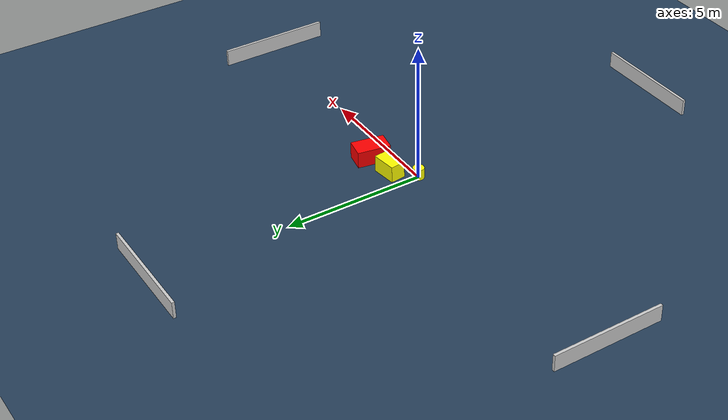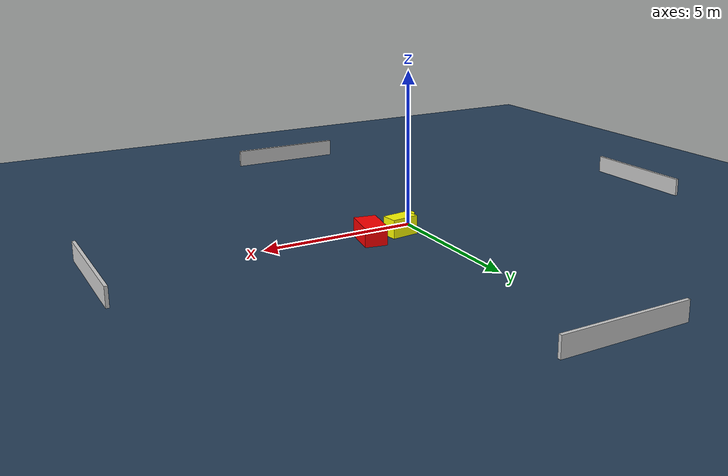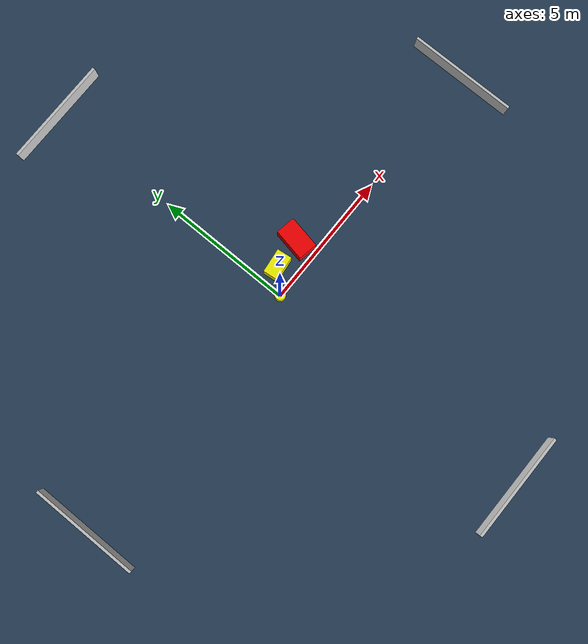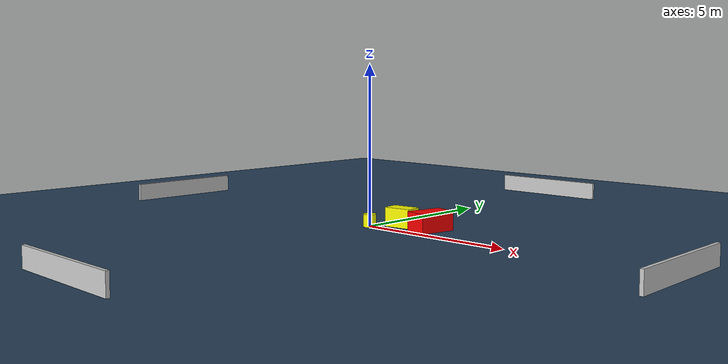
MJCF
<?xml version="1.0" ?>
<mujoco model="generated_environment">
  <option timestep="0.01" integrator="RK4" cone="elliptic"/>
  <default>
    <geom density="1"/>
  </default>
  <asset>
    <texture builtin="gradient" height="3072" name="skybox" rgb1="0.3 0.5 0.7" rgb2="0 0 0" type="skybox" width="512"/>
    <texture builtin="checker" height="300" name="groundplane" rgb1="0.2 0.3 0.4" rgb2="0.1 0.2 0.3" type="2d" width="300"/>
    <material name="groundplane" reflectance="0.2" texrepeat="5 5" texture="groundplane"/>
  </asset>
  <worldbody>
    <light dir="0 0 -1" directional="true" pos="0 0 1.5"/>
    <geom condim="3" friction="0.5 0.005 0.001" material="groundplane" name="floor" pos="0 0 0" size="0 0 0.05" type="plane"/>
    <body name="walls">
      <geom name="wall_1" condim="4" pos="-10.0 0.0 0.3" rgba="0.800000011920929 0.800000011920929 0.800000011920929 1.0" size="0.05 2.0 0.3" type="box"/>
      <geom name="wall_2" condim="4" pos="10.0 0.0 0.3" rgba="0.800000011920929 0.800000011920929 0.800000011920929 1.0" size="0.05 2.0 0.3" type="box"/>
      <geom name="wall_3" condim="4" pos="0.0 -10.0 0.3" rgba="0.800000011920929 0.800000011920929 0.800000011920929 1.0" size="2.0 0.05 0.3" type="box"/>
      <geom name="wall_4" condim="4" pos="0.0 10.0 0.3" rgba="0.800000011920929 0.800000011920929 0.800000011920929 1.0" size="2.0 0.05 0.3" type="box"/>
    </body>
    <body name="robot">
      <joint name="joint_x" type="slide" pos="0 0 0" axis="1 0 0"/>
      <joint name="joint_y" type="slide" pos="0 0 0" axis="0 1 0"/>
      <geom name="robot" type="cylinder" pos="0.0 0.0 0.2" size="0.2 0.2 0.0" mass="5.0" friction="1.0 0.005 0.0001" condim="4" rgba="1.0 1.0 0.0 1.0"/>
    </body>
    <body name="obstacle_1_movable">
      <geom name="obstacle_1_movable" condim="4" pos="0.7087482299446437 0.6968750549853211 0.3" euler="0 0 186.7560653791318" friction="0.0 0.005 0.001" rgba="1.0 1.0 0.0 1.0" size="0.4480767014963085 0.27032300454286895 0.3" type="box" mass="0.1"/>
      <joint type="free"/>
    </body>
    <body name="obstacle_2_static">
      <geom name="obstacle_2_static" condim="4" pos="1.807278593864164 0.7641240777066337 0.3" euler="0 0 259.5370960392293" friction="0.0 0.005 0.001" rgba="1.0 0.0 0.0 1.0" size="0.5963840688586992 0.35489285318574404 0.3" type="box"/>
    </body>
  </worldbody>
  <actuator>
    <motor name="actuator_x" joint="joint_x" gear="1" ctrlrange="-1 1"/>
    <motor name="actuator_y" joint="joint_y" gear="1" ctrlrange="-1 1"/>
  </actuator>
</mujoco>
